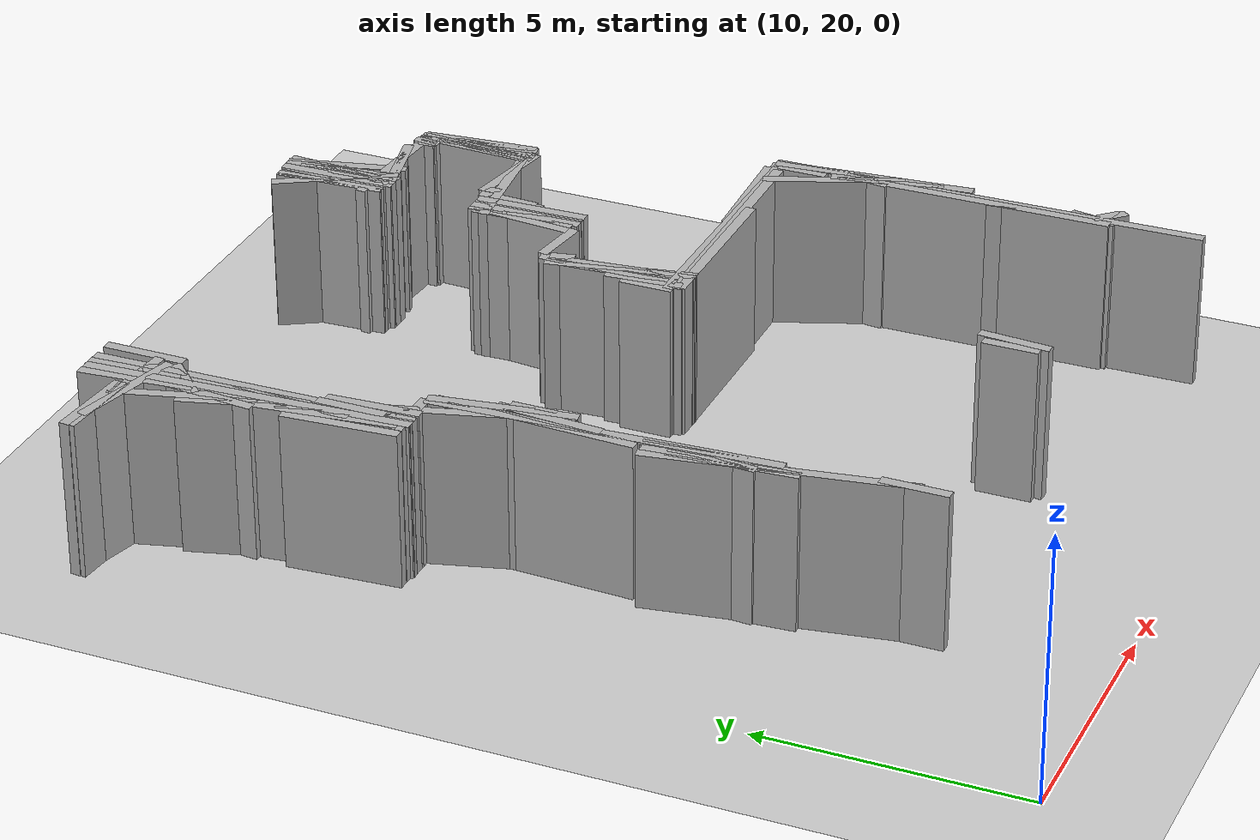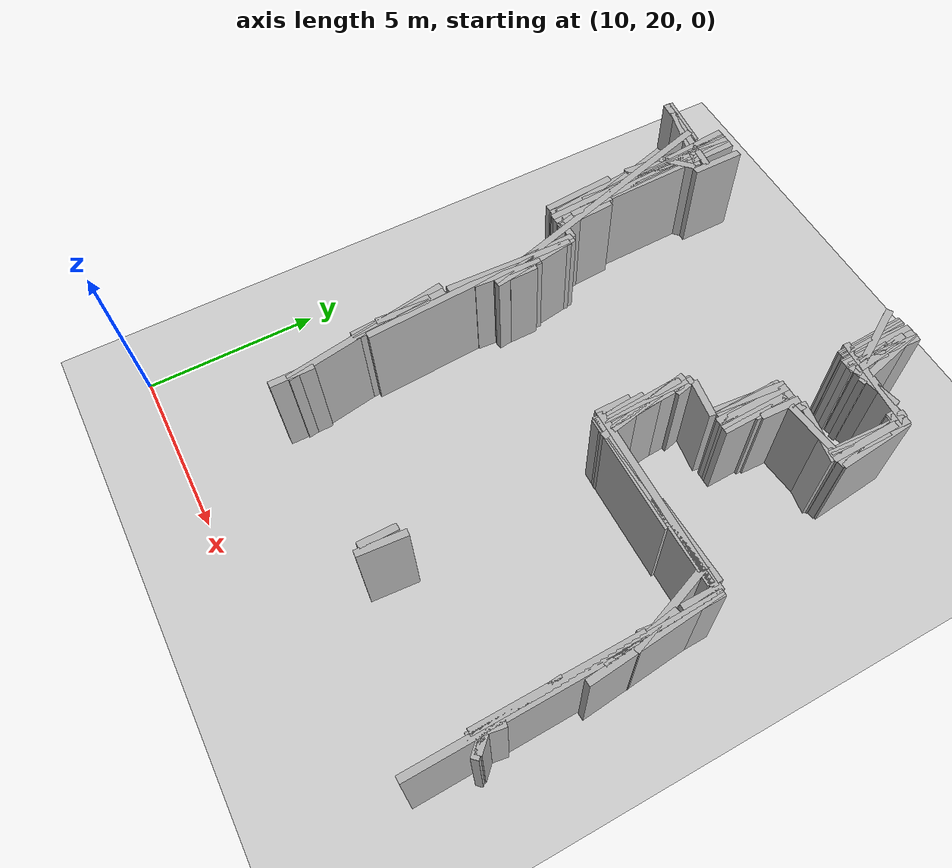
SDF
<sdf version="1.6">
 <world name="aboureyhan">
  <model name="ground_plane">
   <static>true</static>
   <link name="link">
    <collision name="collision">
     <geometry><plane><normal>0 0 1</normal><size>100 100</size></plane></geometry>
    </collision>
    <visual name="visual">
     <geometry><plane><normal>0 0 1</normal><size>500 500</size></plane></geometry>
     <material>
      <ambient>0.8 0.8 0.8 1</ambient>
      <diffuse>0.8 0.8 0.8 1</diffuse>
      <specular>0.8 0.8 0.8 1</specular>
     </material>
    </visual>
   </link>
  </model>
  <model name="wall_29">
   <static>true</static>
   <pose>12.350000000000001 35.1 1.5 0 0 -1.5544043524868911</pose>
   <link name="link">
    <collision name="collision"><geometry><box><size>6.100819617067867 0.2 3.0</size></box></geometry></collision>
    <visual name="visual">
     <geometry><box><size>6.100819617067867 0.2 3.0</size></box></geometry>
     <material><ambient>0.5 0.5 0.5 1</ambient><diffuse>0.7 0.7 0.7 1</diffuse></material>
    </visual>
   </link>
  </model>
  <model name="wall_34">
   <static>true</static>
   <pose>18.55 30.475 1.5 0 0 -1.501939837493851</pose>
   <link name="link">
    <collision name="collision"><geometry><box><size>1.453444185374866 0.2 3.0</size></box></geometry></collision>
    <visual name="visual">
     <geometry><box><size>1.453444185374866 0.2 3.0</size></box></geometry>
     <material><ambient>0.5 0.5 0.5 1</ambient><diffuse>0.7 0.7 0.7 1</diffuse></material>
    </visual>
   </link>
  </model>
  <model name="wall_44">
   <static>true</static>
   <pose>20.575000000000003 37.4 1.5 0 0 -1.3258176636680326</pose>
   <link name="link">
    <collision name="collision">
     <geometry><box><size>2.2677080940897163 0.2 3.0</size></box></geometry>
    </collision>
    <visual name="visual">
     <geometry><box><size>2.2677080940897163 0.2 3.0</size></box></geometry>
     <material><ambient>0.5 0.5 0.5 1</ambient><diffuse>0.7 0.7 0.7 1</diffuse></material>
    </visual>
   </link>
  </model>
  <model name="wall_47">
   <static>true</static>
   <pose>13.3 27.275 1.5 0 0 -1.5195591593914772</pose>
   <link name="link">
    <collision name="collision">
     <geometry><box><size>1.9525624189766664 0.2 3.0</size></box></geometry>
    </collision>
    <visual name="visual">
     <geometry><box><size>1.9525624189766664 0.2 3.0</size></box></geometry>
     <material><ambient>0.5 0.5 0.5 1</ambient><diffuse>0.7 0.7 0.7 1</diffuse></material>
    </visual>
   </link>
  </model>
  <model name="wall_86">
   <static>true</static>
   <pose>11.825000000000001 33.175 1.5 0 0 -1.5011417530663276</pose>
   <link name="link">
    <collision name="collision">
     <geometry><box><size>2.1552262062252363 0.2 3.0</size></box></geometry>
    </collision>
    <visual name="visual">
     <geometry><box><size>2.1552262062252363 0.2 3.0</size></box></geometry>
     <material><ambient>0.5 0.5 0.5 1</ambient><diffuse>0.7 0.7 0.7 1</diffuse></material>
    </visual>
   </link>
  </model>
  <model name="wall_87">
   <static>true</static>
   <pose>13.175 30.174999999999997 1.5 0 0 1.530817639671607</pose>
   <link name="link">
    <collision name="collision"><geometry><box><size>3.752998800959041 0.2 3.0</size></box></geometry></collision>
    <visual name="visual">
     <geometry><box><size>3.752998800959041 0.2 3.0</size></box></geometry>
     <material><ambient>0.5 0.5 0.5 1</ambient><diffuse>0.7 0.7 0.7 1</diffuse></material>
    </visual>
   </link>
  </model>
  <model name="wall_106">
   <static>true</static>
   <pose>23.925 25.85 1.5 0 0 -1.5527260047686724</pose>
   <link name="link">
    <collision name="collision"><geometry><box><size>8.301355311032045 0.2 3.0</size></box></geometry></collision>
    <visual name="visual">
     <geometry><box><size>8.301355311032045 0.2 3.0</size></box></geometry>
     <material><ambient>0.5 0.5 0.5 1</ambient><diffuse>0.7 0.7 0.7 1</diffuse></material>
    </visual>
   </link>
  </model>
  <model name="wall_122">
   <static>true</static>
   <pose>12.025 35.1 1.5 0 0 -1.4808755377596439</pose>
   <link name="link">
    <collision name="collision"><geometry><box><size>6.124744892646559 0.2 3.0</size></box></geometry></collision>
    <visual name="visual">
     <geometry><box><size>6.124744892646559 0.2 3.0</size></box></geometry>
     <material><ambient>0.5 0.5 0.5 1</ambient><diffuse>0.7 0.7 0.7 1</diffuse></material>
    </visual>
   </link>
  </model>
  <model name="wall_125">
   <static>true</static>
   <pose>23.700000000000003 29.5 1.5 0 0 1.5707963267948966</pose>
   <link name="link">
    <collision name="collision">
     <geometry><box><size>1.0999999999999943 0.2 3.0</size></box></geometry>
    </collision>
    <visual name="visual">
     <geometry><box><size>1.0999999999999943 0.2 3.0</size></box></geometry>
     <material><ambient>0.5 0.5 0.5 1</ambient><diffuse>0.7 0.7 0.7 1</diffuse></material>
    </visual>
   </link>
  </model>
  <model name="wall_130">
   <static>true</static>
   <pose>20.325000000000003 33.475 1.5 0 0 -1.5475447039844332</pose>
   <link name="link">
    <collision name="collision">
     <geometry><box><size>2.1505813167606482 0.2 3.0</size></box></geometry>
    </collision>
    <visual name="visual">
     <geometry><box><size>2.1505813167606482 0.2 3.0</size></box></geometry>
     <material><ambient>0.5 0.5 0.5 1</ambient><diffuse>0.7 0.7 0.7 1</diffuse></material>
    </visual>
   </link>
  </model>
  <model name="wall_133">
   <static>true</static>
   <pose>20.375 33.85 1.5 0 0 -1.5253730473733194</pose>
   <link name="link">
    <collision name="collision">
     <geometry><box><size>1.1011357772772707 0.2 3.0</size></box></geometry>
    </collision>
    <visual name="visual">
     <geometry><box><size>1.1011357772772707 0.2 3.0</size></box></geometry>
     <material><ambient>0.5 0.5 0.5 1</ambient><diffuse>0.7 0.7 0.7 1</diffuse></material>
    </visual>
   </link>
  </model>
  <model name="wall_134">
   <static>true</static>
   <pose>20.175000000000004 37.375 1.5 0 0 -1.5485777614681773</pose>
   <link name="link">
    <collision name="collision"><geometry><box><size>2.25055548698538 0.2 3.0</size></box></geometry></collision>
    <visual name="visual">
     <geometry><box><size>2.25055548698538 0.2 3.0</size></box></geometry>
     <material><ambient>0.5 0.5 0.5 1</ambient><diffuse>0.7 0.7 0.7 1</diffuse></material>
    </visual>
   </link>
  </model>
  <model name="wall_143">
   <static>true</static>
   <pose>11.9 36.475 1.5 0 0 1.4814823338016745</pose>
   <link name="link">
    <collision name="collision"><geometry><box><size>3.363406011768436 0.2 3.0</size></box></geometry></collision>
    <visual name="visual">
     <geometry><box><size>3.363406011768436 0.2 3.0</size></box></geometry>
     <material><ambient>0.5 0.5 0.5 1</ambient><diffuse>0.7 0.7 0.7 1</diffuse></material>
    </visual>
   </link>
  </model>
  <model name="wall_145">
   <static>true</static>
   <pose>19.875 33.475 1.5 0 0 -1.5451609182732189</pose>
   <link name="link">
    <collision name="collision">
     <geometry><box><size>1.9506409203131188 0.2 3.0</size></box></geometry>
    </collision>
    <visual name="visual">
     <geometry><box><size>1.9506409203131188 0.2 3.0</size></box></geometry>
     <material><ambient>0.5 0.5 0.5 1</ambient><diffuse>0.7 0.7 0.7 1</diffuse></material>
    </visual>
   </link>
  </model>
  <model name="wall_196">
   <static>true</static>
   <pose>13.650000000000002 23.525 1.5 0 0 1.5707963267948966</pose>
   <link name="link">
    <collision name="collision"><geometry><box><size>1.25 0.2 3.0</size></box></geometry></collision>
    <visual name="visual">
     <geometry><box><size>1.25 0.2 3.0</size></box></geometry>
     <material><ambient>0.5 0.5 0.5 1</ambient><diffuse>0.7 0.7 0.7 1</diffuse></material>
    </visual>
   </link>
  </model>
  <model name="wall_198">
   <static>true</static>
   <pose>18.800000000000004 31.1 1.5 0 0 -1.467714718272196</pose>
   <link name="link">
    <collision name="collision">
     <geometry><box><size>2.9154759474226415 0.2 3.0</size></box></geometry>
    </collision>
    <visual name="visual">
     <geometry><box><size>2.9154759474226415 0.2 3.0</size></box></geometry>
     <material><ambient>0.5 0.5 0.5 1</ambient><diffuse>0.7 0.7 0.7 1</diffuse></material>
    </visual>
   </link>
  </model>
  <model name="wall_207">
   <static>true</static>
   <pose>12.100000000000001 35.1 1.5 0 0 -1.521655592378877</pose>
   <link name="link">
    <collision name="collision"><geometry><box><size>6.107372593840997 0.2 3.0</size></box></geometry></collision>
    <visual name="visual">
     <geometry><box><size>6.107372593840997 0.2 3.0</size></box></geometry>
     <material><ambient>0.5 0.5 0.5 1</ambient><diffuse>0.7 0.7 0.7 1</diffuse></material>
    </visual>
   </link>
  </model>
  <model name="wall_211">
   <static>true</static>
   <pose>20.25 33.475 1.5 0 0 1.5707963267948966</pose>
   <link name="link">
    <collision name="collision">
     <geometry><box><size>2.1499999999999915 0.2 3.0</size></box></geometry>
    </collision>
    <visual name="visual">
     <geometry><box><size>2.1499999999999915 0.2 3.0</size></box></geometry>
     <material><ambient>0.5 0.5 0.5 1</ambient><diffuse>0.7 0.7 0.7 1</diffuse></material>
    </visual>
   </link>
  </model>
  <model name="wall_218">
   <static>true</static>
   <pose>12.600000000000001 32.925 1.5 0 0 -1.5137155443886312</pose>
   <link name="link">
    <collision name="collision">
     <geometry><box><size>1.7528548142958105 0.2 3.0</size></box></geometry>
    </collision>
    <visual name="visual">
     <geometry><box><size>1.7528548142958105 0.2 3.0</size></box></geometry>
     <material><ambient>0.5 0.5 0.5 1</ambient><diffuse>0.7 0.7 0.7 1</diffuse></material>
    </visual>
   </link>
  </model>
  <model name="wall_221">
   <static>true</static>
   <pose>13.275000000000002 28.975 1.5 0 0 -1.516585927320233</pose>
   <link name="link">
    <collision name="collision"><geometry><box><size>6.459489143887467 0.2 3.0</size></box></geometry></collision>
    <visual name="visual">
     <geometry><box><size>6.459489143887467 0.2 3.0</size></box></geometry>
     <material><ambient>0.5 0.5 0.5 1</ambient><diffuse>0.7 0.7 0.7 1</diffuse></material>
    </visual>
   </link>
  </model>
  <model name="wall_222">
   <static>true</static>
   <pose>22.225 35.475 1.5 0 0 1.5070530142622103</pose>
   <link name="link">
    <collision name="collision"><geometry><box><size>2.354782367863332 0.2 3.0</size></box></geometry></collision>
    <visual name="visual">
     <geometry><box><size>2.354782367863332 0.2 3.0</size></box></geometry>
     <material><ambient>0.5 0.5 0.5 1</ambient><diffuse>0.7 0.7 0.7 1</diffuse></material>
    </visual>
   </link>
  </model>
  <model name="wall_270">
   <static>true</static>
   <pose>22.150000000000002 35.5 1.5 0 0 1.5273454314033654</pose>
   <link name="link">
    <collision name="collision"><geometry><box><size>2.302172886644279 0.2 3.0</size></box></geometry></collision>
    <visual name="visual">
     <geometry><box><size>2.302172886644279 0.2 3.0</size></box></geometry>
     <material><ambient>0.5 0.5 0.5 1</ambient><diffuse>0.7 0.7 0.7 1</diffuse></material>
    </visual>
   </link>
  </model>
  <model name="wall_292">
   <static>true</static>
   <pose>13.200000000000001 26.925000000000004 1.5 0 0 1.5063694873693443</pose>
   <link name="link">
    <collision name="collision">
     <geometry><box><size>1.5532224567009036 0.2 3.0</size></box></geometry>
    </collision>
    <visual name="visual">
     <geometry><box><size>1.5532224567009036 0.2 3.0</size></box></geometry>
     <material><ambient>0.5 0.5 0.5 1</ambient><diffuse>0.7 0.7 0.7 1</diffuse></material>
    </visual>
   </link>
  </model>
  <model name="wall_320">
   <static>true</static>
   <pose>20.375 37.425 1.5 0 0 1.5011417530663276</pose>
   <link name="link">
    <collision name="collision">
     <geometry><box><size>2.1552262062252363 0.2 3.0</size></box></geometry>
    </collision>
    <visual name="visual">
     <geometry><box><size>2.1552262062252363 0.2 3.0</size></box></geometry>
     <material><ambient>0.5 0.5 0.5 1</ambient><diffuse>0.7 0.7 0.7 1</diffuse></material>
    </visual>
   </link>
  </model>
  <model name="wall_333">
   <static>true</static>
   <pose>19.900000000000002 37.4 1.5 0 0 -1.5232132235179128</pose>
   <link name="link">
    <collision name="collision">
     <geometry><box><size>2.1023796041628726 0.2 3.0</size></box></geometry>
    </collision>
    <visual name="visual">
     <geometry><box><size>2.1023796041628726 0.2 3.0</size></box></geometry>
     <material><ambient>0.5 0.5 0.5 1</ambient><diffuse>0.7 0.7 0.7 1</diffuse></material>
    </visual>
   </link>
  </model>
  <model name="wall_334">
   <static>true</static>
   <pose>13.375000000000002 30.0 1.5 0 0 1.4959364790841287</pose>
   <link name="link">
    <collision name="collision">
     <geometry><box><size>2.0056171120131583 0.2 3.0</size></box></geometry>
    </collision>
    <visual name="visual">
     <geometry><box><size>2.0056171120131583 0.2 3.0</size></box></geometry>
     <material><ambient>0.5 0.5 0.5 1</ambient><diffuse>0.7 0.7 0.7 1</diffuse></material>
    </visual>
   </link>
  </model>
  <model name="wall_336">
   <static>true</static>
   <pose>18.8 23.625 1.5 0 0 1.5707963267948966</pose>
   <link name="link">
    <collision name="collision">
     <geometry><box><size>1.0499999999999972 0.2 3.0</size></box></geometry>
    </collision>
    <visual name="visual">
     <geometry><box><size>1.0499999999999972 0.2 3.0</size></box></geometry>
     <material><ambient>0.5 0.5 0.5 1</ambient><diffuse>0.7 0.7 0.7 1</diffuse></material>
    </visual>
   </link>
  </model>
  <model name="wall_340">
   <static>true</static>
   <pose>22.450000000000003 35.5 1.5 0 0 -1.4801364395941514</pose>
   <link name="link">
    <collision name="collision"><geometry><box><size>2.209072203437441 0.2 3.0</size></box></geometry></collision>
    <visual name="visual">
     <geometry><box><size>2.209072203437441 0.2 3.0</size></box></geometry>
     <material><ambient>0.5 0.5 0.5 1</ambient><diffuse>0.7 0.7 0.7 1</diffuse></material>
    </visual>
   </link>
  </model>
  <model name="wall_345">
   <static>true</static>
   <pose>21.025000000000002 29.925000000000004 1.5 0 0 -0.009523521593612314</pose>
   <link name="link">
    <collision name="collision"><geometry><box><size>5.250238089839355 0.2 3.0</size></box></geometry></collision>
    <visual name="visual">
     <geometry><box><size>5.250238089839355 0.2 3.0</size></box></geometry>
     <material><ambient>0.5 0.5 0.5 1</ambient><diffuse>0.7 0.7 0.7 1</diffuse></material>
    </visual>
   </link>
  </model>
  <model name="wall_350">
   <static>true</static>
   <pose>23.975 28.1 1.5 0 0 -1.4789502005301587</pose>
   <link name="link">
    <collision name="collision"><geometry><box><size>3.816084380618434 0.2 3.0</size></box></geometry></collision>
    <visual name="visual">
     <geometry><box><size>3.816084380618434 0.2 3.0</size></box></geometry>
     <material><ambient>0.5 0.5 0.5 1</ambient><diffuse>0.7 0.7 0.7 1</diffuse></material>
    </visual>
   </link>
  </model>
  <model name="wall_354">
   <static>true</static>
   <pose>20.125 37.375 1.5 0 0 -1.5485777614681773</pose>
   <link name="link">
    <collision name="collision"><geometry><box><size>2.25055548698538 0.2 3.0</size></box></geometry></collision>
    <visual name="visual">
     <geometry><box><size>2.25055548698538 0.2 3.0</size></box></geometry>
     <material><ambient>0.5 0.5 0.5 1</ambient><diffuse>0.7 0.7 0.7 1</diffuse></material>
    </visual>
   </link>
  </model>
  <model name="wall_387">
   <static>true</static>
   <pose>23.825000000000003 25.525 1.5 0 0 -1.4801364395941499</pose>
   <link name="link">
    <collision name="collision">
     <geometry><box><size>0.5522680508593603 0.2 3.0</size></box></geometry>
    </collision>
    <visual name="visual">
     <geometry><box><size>0.5522680508593603 0.2 3.0</size></box></geometry>
     <material><ambient>0.5 0.5 0.5 1</ambient><diffuse>0.7 0.7 0.7 1</diffuse></material>
    </visual>
   </link>
  </model>
  <model name="wall_390">
   <static>true</static>
   <pose>12.400000000000002 33.25 1.5 0 0 1.5707963267948966</pose>
   <link name="link">
    <collision name="collision">
     <geometry><box><size>1.3000000000000114 0.2 3.0</size></box></geometry>
    </collision>
    <visual name="visual">
     <geometry><box><size>1.3000000000000114 0.2 3.0</size></box></geometry>
     <material><ambient>0.5 0.5 0.5 1</ambient><diffuse>0.7 0.7 0.7 1</diffuse></material>
    </visual>
   </link>
  </model>
  <model name="wall_416">
   <static>true</static>
   <pose>20.200000000000003 29.75 1.5 0 0 0.0</pose>
   <link name="link">
    <collision name="collision"><geometry><box><size>3.400000000000002 0.2 3.0</size></box></geometry></collision>
    <visual name="visual">
     <geometry><box><size>3.400000000000002 0.2 3.0</size></box></geometry>
     <material><ambient>0.5 0.5 0.5 1</ambient><diffuse>0.7 0.7 0.7 1</diffuse></material>
    </visual>
   </link>
  </model>
  <model name="wall_424">
   <static>true</static>
   <pose>22.400000000000002 30.0 1.5 0 0 0.04164257909858608</pose>
   <link name="link">
    <collision name="collision">
     <geometry><box><size>2.4020824298928614 0.2 3.0</size></box></geometry>
    </collision>
    <visual name="visual">
     <geometry><box><size>2.4020824298928614 0.2 3.0</size></box></geometry>
     <material><ambient>0.5 0.5 0.5 1</ambient><diffuse>0.7 0.7 0.7 1</diffuse></material>
    </visual>
   </link>
  </model>
  <model name="wall_457">
   <static>true</static>
   <pose>21.050000000000004 36.6 1.5 0 0 -0.07393903765794141</pose>
   <link name="link">
    <collision name="collision">
     <geometry><box><size>2.7073972741361763 0.2 3.0</size></box></geometry>
    </collision>
    <visual name="visual">
     <geometry><box><size>2.7073972741361763 0.2 3.0</size></box></geometry>
     <material><ambient>0.5 0.5 0.5 1</ambient><diffuse>0.7 0.7 0.7 1</diffuse></material>
    </visual>
   </link>
  </model>
  <model name="wall_461">
   <static>true</static>
   <pose>12.4 33.45 1.5 0 0 -1.2958864853142245</pose>
   <link name="link">
    <collision name="collision"><geometry><box><size>8.104319835741935 0.2 3.0</size></box></geometry></collision>
    <visual name="visual">
     <geometry><box><size>8.104319835741935 0.2 3.0</size></box></geometry>
     <material><ambient>0.5 0.5 0.5 1</ambient><diffuse>0.7 0.7 0.7 1</diffuse></material>
    </visual>
   </link>
  </model>
  <model name="wall_479">
   <static>true</static>
   <pose>13.225000000000001 26.825000000000003 1.5 0 0 -1.4801364395941514</pose>
   <link name="link">
    <collision name="collision">
     <geometry><box><size>2.7613402542968153 0.2 3.0</size></box></geometry>
    </collision>
    <visual name="visual">
     <geometry><box><size>2.7613402542968153 0.2 3.0</size></box></geometry>
     <material><ambient>0.5 0.5 0.5 1</ambient><diffuse>0.7 0.7 0.7 1</diffuse></material>
    </visual>
   </link>
  </model>
  <model name="wall_492">
   <static>true</static>
   <pose>23.825000000000003 25.700000000000003 1.5 0 0 -1.559685672897289</pose>
   <link name="link">
    <collision name="collision"><geometry><box><size>4.500277769204919 0.2 3.0</size></box></geometry></collision>
    <visual name="visual">
     <geometry><box><size>4.500277769204919 0.2 3.0</size></box></geometry>
     <material><ambient>0.5 0.5 0.5 1</ambient><diffuse>0.7 0.7 0.7 1</diffuse></material>
    </visual>
   </link>
  </model>
  <model name="wall_497">
   <static>true</static>
   <pose>22.275 35.3 1.5 0 0 -1.545801533175976</pose>
   <link name="link">
    <collision name="collision"><geometry><box><size>2.000624902374256 0.2 3.0</size></box></geometry></collision>
    <visual name="visual">
     <geometry><box><size>2.000624902374256 0.2 3.0</size></box></geometry>
     <material><ambient>0.5 0.5 0.5 1</ambient><diffuse>0.7 0.7 0.7 1</diffuse></material>
    </visual>
   </link>
  </model>
  <model name="wall_517">
   <static>true</static>
   <pose>20.700000000000003 34.449999999999996 1.5 0 0 1.5707963267948966</pose>
   <link name="link">
    <collision name="collision">
     <geometry><box><size>0.29999999999999716 0.2 3.0</size></box></geometry>
    </collision>
    <visual name="visual">
     <geometry><box><size>0.29999999999999716 0.2 3.0</size></box></geometry>
     <material><ambient>0.5 0.5 0.5 1</ambient><diffuse>0.7 0.7 0.7 1</diffuse></material>
    </visual>
   </link>
  </model>
  <model name="wall_522">
   <static>true</static>
   <pose>19.85 33.525 1.5 0 0 1.4735431285433294</pose>
   <link name="link">
    <collision name="collision">
     <geometry><box><size>2.0597329924045953 0.2 3.0</size></box></geometry>
    </collision>
    <visual name="visual">
     <geometry><box><size>2.0597329924045953 0.2 3.0</size></box></geometry>
     <material><ambient>0.5 0.5 0.5 1</ambient><diffuse>0.7 0.7 0.7 1</diffuse></material>
    </visual>
   </link>
  </model>
  <model name="wall_529">
   <static>true</static>
   <pose>22.0 36.45 1.5 0 0 1.5707963267948966</pose>
   <link name="link">
    <collision name="collision">
     <geometry><box><size>0.4000000000000057 0.2 3.0</size></box></geometry>
    </collision>
    <visual name="visual">
     <geometry><box><size>0.4000000000000057 0.2 3.0</size></box></geometry>
     <material><ambient>0.5 0.5 0.5 1</ambient><diffuse>0.7 0.7 0.7 1</diffuse></material>
    </visual>
   </link>
  </model>
  <model name="wall_531">
   <static>true</static>
   <pose>10.825000000000001 37.275000000000006 1.5 0 0 -0.09065988720074841</pose>
   <link name="link">
    <collision name="collision">
     <geometry><box><size>1.6568041525780919 0.2 3.0</size></box></geometry>
    </collision>
    <visual name="visual">
     <geometry><box><size>1.6568041525780919 0.2 3.0</size></box></geometry>
     <material><ambient>0.5 0.5 0.5 1</ambient><diffuse>0.7 0.7 0.7 1</diffuse></material>
    </visual>
   </link>
  </model>
  <model name="wall_555">
   <static>true</static>
   <pose>10.825000000000001 37.375 1.5 0 0 -0.09065988720074841</pose>
   <link name="link">
    <collision name="collision">
     <geometry><box><size>1.6568041525780919 0.2 3.0</size></box></geometry>
    </collision>
    <visual name="visual">
     <geometry><box><size>1.6568041525780919 0.2 3.0</size></box></geometry>
     <material><ambient>0.5 0.5 0.5 1</ambient><diffuse>0.7 0.7 0.7 1</diffuse></material>
    </visual>
   </link>
  </model>
  <model name="wall_557">
   <static>true</static>
   <pose>18.775 31.025000000000006 1.5 0 0 -1.3734007669450157</pose>
   <link name="link">
    <collision name="collision"><geometry><box><size>2.804460732476032 0.2 3.0</size></box></geometry></collision>
    <visual name="visual">
     <geometry><box><size>2.804460732476032 0.2 3.0</size></box></geometry>
     <material><ambient>0.5 0.5 0.5 1</ambient><diffuse>0.7 0.7 0.7 1</diffuse></material>
    </visual>
   </link>
  </model>
  <model name="wall_561">
   <static>true</static>
   <pose>23.85 27.1 1.5 0 0 -1.5707963267948966</pose>
   <link name="link">
    <collision name="collision">
     <geometry><box><size>1.2000000000000028 0.2 3.0</size></box></geometry>
    </collision>
    <visual name="visual">
     <geometry><box><size>1.2000000000000028 0.2 3.0</size></box></geometry>
     <material><ambient>0.5 0.5 0.5 1</ambient><diffuse>0.7 0.7 0.7 1</diffuse></material>
    </visual>
   </link>
  </model>
  <model name="wall_575">
   <static>true</static>
   <pose>12.000000000000002 33.525 1.5 0 0 -1.453687582228032</pose>
   <link name="link">
    <collision name="collision">
     <geometry><box><size>2.5675864152935506 0.2 3.0</size></box></geometry>
    </collision>
    <visual name="visual">
     <geometry><box><size>2.5675864152935506 0.2 3.0</size></box></geometry>
     <material><ambient>0.5 0.5 0.5 1</ambient><diffuse>0.7 0.7 0.7 1</diffuse></material>
    </visual>
   </link>
  </model>
  <model name="wall_582">
   <static>true</static>
   <pose>18.775000000000002 31.225 1.5 0 0 -1.5142528898500796</pose>
   <link name="link">
    <collision name="collision"><geometry><box><size>2.654241887997391 0.2 3.0</size></box></geometry></collision>
    <visual name="visual">
     <geometry><box><size>2.654241887997391 0.2 3.0</size></box></geometry>
     <material><ambient>0.5 0.5 0.5 1</ambient><diffuse>0.7 0.7 0.7 1</diffuse></material>
    </visual>
   </link>
  </model>
  <model name="wall_611">
   <static>true</static>
   <pose>19.0 23.625 1.5 0 0 1.4968572891369576</pose>
   <link name="link">
    <collision name="collision">
     <geometry><box><size>1.3536986370680826 0.2 3.0</size></box></geometry>
    </collision>
    <visual name="visual">
     <geometry><box><size>1.3536986370680826 0.2 3.0</size></box></geometry>
     <material><ambient>0.5 0.5 0.5 1</ambient><diffuse>0.7 0.7 0.7 1</diffuse></material>
    </visual>
   </link>
  </model>
  <model name="wall_622">
   <static>true</static>
   <pose>20.075000000000003 33.475 1.5 0 0 -1.5475447039844332</pose>
   <link name="link">
    <collision name="collision">
     <geometry><box><size>2.1505813167606482 0.2 3.0</size></box></geometry>
    </collision>
    <visual name="visual">
     <geometry><box><size>2.1505813167606482 0.2 3.0</size></box></geometry>
     <material><ambient>0.5 0.5 0.5 1</ambient><diffuse>0.7 0.7 0.7 1</diffuse></material>
    </visual>
   </link>
  </model>
  <model name="wall_637">
   <static>true</static>
   <pose>18.400000000000002 30.349999999999994 1.5 0 0 1.5707963267948966</pose>
   <link name="link">
    <collision name="collision"><geometry><box><size>1.0 0.2 3.0</size></box></geometry></collision>
    <visual name="visual">
     <geometry><box><size>1.0 0.2 3.0</size></box></geometry>
     <material><ambient>0.5 0.5 0.5 1</ambient><diffuse>0.7 0.7 0.7 1</diffuse></material>
    </visual>
   </link>
  </model>
  <model name="wall_654">
   <static>true</static>
   <pose>20.025 37.375 1.5 0 0 1.5464109176221779</pose>
   <link name="link">
    <collision name="collision">
     <geometry><box><size>2.0506096654409993 0.2 3.0</size></box></geometry>
    </collision>
    <visual name="visual">
     <geometry><box><size>2.0506096654409993 0.2 3.0</size></box></geometry>
     <material><ambient>0.5 0.5 0.5 1</ambient><diffuse>0.7 0.7 0.7 1</diffuse></material>
    </visual>
   </link>
  </model>
  <model name="wall_671">
   <static>true</static>
   <pose>21.0 29.824999999999996 1.5 0 0 0.009803607479295422</pose>
   <link name="link">
    <collision name="collision"><geometry><box><size>5.100245092149982 0.2 3.0</size></box></geometry></collision>
    <visual name="visual">
     <geometry><box><size>5.100245092149982 0.2 3.0</size></box></geometry>
     <material><ambient>0.5 0.5 0.5 1</ambient><diffuse>0.7 0.7 0.7 1</diffuse></material>
    </visual>
   </link>
  </model>
  <model name="wall_672">
   <static>true</static>
   <pose>23.975 23.8 1.5 0 0 1.405647649380271</pose>
   <link name="link">
    <collision name="collision">
     <geometry><box><size>0.9124143795447313 0.2 3.0</size></box></geometry>
    </collision>
    <visual name="visual">
     <geometry><box><size>0.9124143795447313 0.2 3.0</size></box></geometry>
     <material><ambient>0.5 0.5 0.5 1</ambient><diffuse>0.7 0.7 0.7 1</diffuse></material>
    </visual>
   </link>
  </model>
  <model name="wall_691">
   <static>true</static>
   <pose>21.075000000000003 34.35 1.5 0 0 0.11272761159037642</pose>
   <link name="link">
    <collision name="collision"><geometry><box><size>2.666927070618919 0.2 3.0</size></box></geometry></collision>
    <visual name="visual">
     <geometry><box><size>2.666927070618919 0.2 3.0</size></box></geometry>
     <material><ambient>0.5 0.5 0.5 1</ambient><diffuse>0.7 0.7 0.7 1</diffuse></material>
    </visual>
   </link>
  </model>
  <model name="wall_699">
   <static>true</static>
   <pose>20.375 37.475 1.5 0 0 -1.4494443262241328</pose>
   <link name="link">
    <collision name="collision">
     <geometry><box><size>2.0651876428063356 0.2 3.0</size></box></geometry>
    </collision>
    <visual name="visual">
     <geometry><box><size>2.0651876428063356 0.2 3.0</size></box></geometry>
     <material><ambient>0.5 0.5 0.5 1</ambient><diffuse>0.7 0.7 0.7 1</diffuse></material>
    </visual>
   </link>
  </model>
  <model name="wall_708">
   <static>true</static>
   <pose>12.200000000000001 36.050000000000004 1.5 0 0 -1.5232132235179134</pose>
   <link name="link">
    <collision name="collision"><geometry><box><size>4.204759208325731 0.2 3.0</size></box></geometry></collision>
    <visual name="visual">
     <geometry><box><size>4.204759208325731 0.2 3.0</size></box></geometry>
     <material><ambient>0.5 0.5 0.5 1</ambient><diffuse>0.7 0.7 0.7 1</diffuse></material>
    </visual>
   </link>
  </model>
  <model name="wall_714">
   <static>true</static>
   <pose>13.400000000000002 30.875 1.5 0 0 -1.4209838702220001</pose>
   <link name="link">
    <collision name="collision">
     <geometry><box><size>2.6800186566514848 0.2 3.0</size></box></geometry>
    </collision>
    <visual name="visual">
     <geometry><box><size>2.6800186566514848 0.2 3.0</size></box></geometry>
     <material><ambient>0.5 0.5 0.5 1</ambient><diffuse>0.7 0.7 0.7 1</diffuse></material>
    </visual>
   </link>
  </model>
  <model name="wall_716">
   <static>true</static>
   <pose>13.55 30.375 1.5 0 0 1.5707963267948966</pose>
   <link name="link">
    <collision name="collision">
     <geometry><box><size>0.8499999999999943 0.2 3.0</size></box></geometry>
    </collision>
    <visual name="visual">
     <geometry><box><size>0.8499999999999943 0.2 3.0</size></box></geometry>
     <material><ambient>0.5 0.5 0.5 1</ambient><diffuse>0.7 0.7 0.7 1</diffuse></material>
    </visual>
   </link>
  </model>
  <model name="wall_740">
   <static>true</static>
   <pose>22.325000000000003 35.5 1.5 0 0 -1.419780983873539</pose>
   <link name="link">
    <collision name="collision">
     <geometry><box><size>2.3264780248263794 0.2 3.0</size></box></geometry>
    </collision>
    <visual name="visual">
     <geometry><box><size>2.3264780248263794 0.2 3.0</size></box></geometry>
     <material><ambient>0.5 0.5 0.5 1</ambient><diffuse>0.7 0.7 0.7 1</diffuse></material>
    </visual>
   </link>
  </model>
  <model name="wall_748">
   <static>true</static>
   <pose>13.175 26.575000000000003 1.5 0 0 -1.50705301426221</pose>
   <link name="link">
    <collision name="collision">
     <geometry><box><size>2.3547823678633177 0.2 3.0</size></box></geometry>
    </collision>
    <visual name="visual">
     <geometry><box><size>2.3547823678633177 0.2 3.0</size></box></geometry>
     <material><ambient>0.5 0.5 0.5 1</ambient><diffuse>0.7 0.7 0.7 1</diffuse></material>
    </visual>
   </link>
  </model>
  <model name="wall_750">
   <static>true</static>
   <pose>12.575000000000001 32.2 1.5 0 0 0.0</pose>
   <link name="link">
    <collision name="collision">
     <geometry><box><size>1.1500000000000021 0.2 3.0</size></box></geometry>
    </collision>
    <visual name="visual">
     <geometry><box><size>1.1500000000000021 0.2 3.0</size></box></geometry>
     <material><ambient>0.5 0.5 0.5 1</ambient><diffuse>0.7 0.7 0.7 1</diffuse></material>
    </visual>
   </link>
  </model>
  <model name="wall_756">
   <static>true</static>
   <pose>21.475 34.449999999999996 1.5 0 0 -0.16977827396833686</pose>
   <link name="link">
    <collision name="collision">
     <geometry><box><size>1.7755280904564699 0.2 3.0</size></box></geometry>
    </collision>
    <visual name="visual">
     <geometry><box><size>1.7755280904564699 0.2 3.0</size></box></geometry>
     <material><ambient>0.5 0.5 0.5 1</ambient><diffuse>0.7 0.7 0.7 1</diffuse></material>
    </visual>
   </link>
  </model>
  <model name="wall_780">
   <static>true</static>
   <pose>23.875 27.799999999999997 1.5 0 0 -1.4056476493802703</pose>
   <link name="link">
    <collision name="collision"><geometry><box><size>2.128966885604371 0.2 3.0</size></box></geometry></collision>
    <visual name="visual">
     <geometry><box><size>2.128966885604371 0.2 3.0</size></box></geometry>
     <material><ambient>0.5 0.5 0.5 1</ambient><diffuse>0.7 0.7 0.7 1</diffuse></material>
    </visual>
   </link>
  </model>
  <model name="wall_782">
   <static>true</static>
   <pose>18.650000000000002 31.150000000000006 1.5 0 0 1.5707963267948966</pose>
   <link name="link">
    <collision name="collision"><geometry><box><size>2.5 0.2 3.0</size></box></geometry></collision>
    <visual name="visual">
     <geometry><box><size>2.5 0.2 3.0</size></box></geometry>
     <material><ambient>0.5 0.5 0.5 1</ambient><diffuse>0.7 0.7 0.7 1</diffuse></material>
    </visual>
   </link>
  </model>
  <model name="wall_791">
   <static>true</static>
   <pose>20.0 37.375 1.5 0 0 -1.041206728012823</pose>
   <link name="link">
    <collision name="collision">
     <geometry><box><size>2.3753947040439503 0.2 3.0</size></box></geometry>
    </collision>
    <visual name="visual">
     <geometry><box><size>2.3753947040439503 0.2 3.0</size></box></geometry>
     <material><ambient>0.5 0.5 0.5 1</ambient><diffuse>0.7 0.7 0.7 1</diffuse></material>
    </visual>
   </link>
  </model>
  <model name="wall_795">
   <static>true</static>
   <pose>12.700000000000003 37.375 1.5 0 0 1.5707963267948966</pose>
   <link name="link">
    <collision name="collision">
     <geometry><box><size>1.5500000000000114 0.2 3.0</size></box></geometry>
    </collision>
    <visual name="visual">
     <geometry><box><size>1.5500000000000114 0.2 3.0</size></box></geometry>
     <material><ambient>0.5 0.5 0.5 1</ambient><diffuse>0.7 0.7 0.7 1</diffuse></material>
    </visual>
   </link>
  </model>
  <model name="wall_803">
   <static>true</static>
   <pose>19.85 37.4 1.5 0 0 -1.5232132235179128</pose>
   <link name="link">
    <collision name="collision">
     <geometry><box><size>2.1023796041628726 0.2 3.0</size></box></geometry>
    </collision>
    <visual name="visual">
     <geometry><box><size>2.1023796041628726 0.2 3.0</size></box></geometry>
     <material><ambient>0.5 0.5 0.5 1</ambient><diffuse>0.7 0.7 0.7 1</diffuse></material>
    </visual>
   </link>
  </model>
  <model name="wall_812">
   <static>true</static>
   <pose>20.425000000000004 36.85 1.5 0 0 1.5291537476963077</pose>
   <link name="link">
    <collision name="collision">
     <geometry><box><size>1.2010412149464342 0.2 3.0</size></box></geometry>
    </collision>
    <visual name="visual">
     <geometry><box><size>1.2010412149464342 0.2 3.0</size></box></geometry>
     <material><ambient>0.5 0.5 0.5 1</ambient><diffuse>0.7 0.7 0.7 1</diffuse></material>
    </visual>
   </link>
  </model>
  <model name="wall_814">
   <static>true</static>
   <pose>24.150000000000002 23.599999999999998 1.5 0 0 -0.7853981633974483</pose>
   <link name="link">
    <collision name="collision"><geometry><box><size>0.565685424949236 0.2 3.0</size></box></geometry></collision>
    <visual name="visual">
     <geometry><box><size>0.565685424949236 0.2 3.0</size></box></geometry>
     <material><ambient>0.5 0.5 0.5 1</ambient><diffuse>0.7 0.7 0.7 1</diffuse></material>
    </visual>
   </link>
  </model>
  <model name="wall_816">
   <static>true</static>
   <pose>12.05 34.2 1.5 0 0 -1.295886485314224</pose>
   <link name="link">
    <collision name="collision"><geometry><box><size>4.052159917870967 0.2 3.0</size></box></geometry></collision>
    <visual name="visual">
     <geometry><box><size>4.052159917870967 0.2 3.0</size></box></geometry>
     <material><ambient>0.5 0.5 0.5 1</ambient><diffuse>0.7 0.7 0.7 1</diffuse></material>
    </visual>
   </link>
  </model>
  <model name="wall_825">
   <static>true</static>
   <pose>20.150000000000002 37.0 1.5 0 0 -1.5707963267948966</pose>
   <link name="link">
    <collision name="collision">
     <geometry><box><size>1.3000000000000114 0.2 3.0</size></box></geometry>
    </collision>
    <visual name="visual">
     <geometry><box><size>1.3000000000000114 0.2 3.0</size></box></geometry>
     <material><ambient>0.5 0.5 0.5 1</ambient><diffuse>0.7 0.7 0.7 1</diffuse></material>
    </visual>
   </link>
  </model>
  <model name="wall_842">
   <static>true</static>
   <pose>12.15 35.225 1.5 0 0 -1.5195591593914777</pose>
   <link name="link">
    <collision name="collision"><geometry><box><size>5.85768725693 0.2 3.0</size></box></geometry></collision>
    <visual name="visual">
     <geometry><box><size>5.85768725693 0.2 3.0</size></box></geometry>
     <material><ambient>0.5 0.5 0.5 1</ambient><diffuse>0.7 0.7 0.7 1</diffuse></material>
    </visual>
   </link>
  </model>
  <model name="wall_844">
   <static>true</static>
   <pose>22.35 35.2 1.5 0 0 -1.5707963267948966</pose>
   <link name="link">
    <collision name="collision">
     <geometry><box><size>1.5999999999999943 0.2 3.0</size></box></geometry>
    </collision>
    <visual name="visual">
     <geometry><box><size>1.5999999999999943 0.2 3.0</size></box></geometry>
     <material><ambient>0.5 0.5 0.5 1</ambient><diffuse>0.7 0.7 0.7 1</diffuse></material>
    </visual>
   </link>
  </model>
  <model name="wall_851">
   <static>true</static>
   <pose>19.3 32.475 1.5 0 0 -0.13552771398549296</pose>
   <link name="link">
    <collision name="collision">
     <geometry><box><size>1.1101801655587262 0.2 3.0</size></box></geometry>
    </collision>
    <visual name="visual">
     <geometry><box><size>1.1101801655587262 0.2 3.0</size></box></geometry>
     <material><ambient>0.5 0.5 0.5 1</ambient><diffuse>0.7 0.7 0.7 1</diffuse></material>
    </visual>
   </link>
  </model>
  <model name="wall_890">
   <static>true</static>
   <pose>24.225 23.474999999999998 1.5 0 0 -0.7853981633974483</pose>
   <link name="link">
    <collision name="collision">
     <geometry><box><size>0.4949747468305853 0.2 3.0</size></box></geometry>
    </collision>
    <visual name="visual">
     <geometry><box><size>0.4949747468305853 0.2 3.0</size></box></geometry>
     <material><ambient>0.5 0.5 0.5 1</ambient><diffuse>0.7 0.7 0.7 1</diffuse></material>
    </visual>
   </link>
  </model>
  <model name="wall_893">
   <static>true</static>
   <pose>20.025 33.150000000000006 1.5 0 0 -1.537475330916649</pose>
   <link name="link">
    <collision name="collision">
     <geometry><box><size>1.5008331019803633 0.2 3.0</size></box></geometry>
    </collision>
    <visual name="visual">
     <geometry><box><size>1.5008331019803633 0.2 3.0</size></box></geometry>
     <material><ambient>0.5 0.5 0.5 1</ambient><diffuse>0.7 0.7 0.7 1</diffuse></material>
    </visual>
   </link>
  </model>
  <model name="wall_896">
   <static>true</static>
   <pose>23.575000000000003 28.75 1.5 0 0 -1.2076493168487206</pose>
   <link name="link">
    <collision name="collision">
     <geometry><box><size>2.6744158240632663 0.2 3.0</size></box></geometry>
    </collision>
    <visual name="visual">
     <geometry><box><size>2.6744158240632663 0.2 3.0</size></box></geometry>
     <material><ambient>0.5 0.5 0.5 1</ambient><diffuse>0.7 0.7 0.7 1</diffuse></material>
    </visual>
   </link>
  </model>
  <model name="wall_903">
   <static>true</static>
   <pose>13.300000000000002 25.8 1.5 0 0 -1.4056476493802699</pose>
   <link name="link">
    <collision name="collision"><geometry><box><size>4.86621002423858 0.2 3.0</size></box></geometry></collision>
    <visual name="visual">
     <geometry><box><size>4.86621002423858 0.2 3.0</size></box></geometry>
     <material><ambient>0.5 0.5 0.5 1</ambient><diffuse>0.7 0.7 0.7 1</diffuse></material>
    </visual>
   </link>
  </model>
  <model name="wall_910">
   <static>true</static>
   <pose>18.625 31.075000000000003 1.5 0 0 -1.5070530142622085</pose>
   <link name="link">
    <collision name="collision">
     <geometry><box><size>2.3547823678633177 0.2 3.0</size></box></geometry>
    </collision>
    <visual name="visual">
     <geometry><box><size>2.3547823678633177 0.2 3.0</size></box></geometry>
     <material><ambient>0.5 0.5 0.5 1</ambient><diffuse>0.7 0.7 0.7 1</diffuse></material>
    </visual>
   </link>
  </model>
  <model name="wall_913">
   <static>true</static>
   <pose>11.475000000000001 37.075 1.5 0 0 -0.250443089611357</pose>
   <link name="link">
    <collision name="collision"><geometry><box><size>2.219234102117216 0.2 3.0</size></box></geometry></collision>
    <visual name="visual">
     <geometry><box><size>2.219234102117216 0.2 3.0</size></box></geometry>
     <material><ambient>0.5 0.5 0.5 1</ambient><diffuse>0.7 0.7 0.7 1</diffuse></material>
    </visual>
   </link>
  </model>
  <model name="wall_926">
   <static>true</static>
   <pose>22.075000000000003 36.45 1.5 0 0 1.4711276743037331</pose>
   <link name="link">
    <collision name="collision">
     <geometry><box><size>0.5024937810560446 0.2 3.0</size></box></geometry>
    </collision>
    <visual name="visual">
     <geometry><box><size>0.5024937810560446 0.2 3.0</size></box></geometry>
     <material><ambient>0.5 0.5 0.5 1</ambient><diffuse>0.7 0.7 0.7 1</diffuse></material>
    </visual>
   </link>
  </model>
  <model name="wall_929">
   <static>true</static>
   <pose>13.100000000000001 31.475 1.5 0 0 1.5707963267948966</pose>
   <link name="link">
    <collision name="collision">
     <geometry><box><size>0.6499999999999915 0.2 3.0</size></box></geometry>
    </collision>
    <visual name="visual">
     <geometry><box><size>0.6499999999999915 0.2 3.0</size></box></geometry>
     <material><ambient>0.5 0.5 0.5 1</ambient><diffuse>0.7 0.7 0.7 1</diffuse></material>
    </visual>
   </link>
  </model>
  <model name="wall_944">
   <static>true</static>
   <pose>21.025 36.525 1.5 0 0 0.2220819019054853</pose>
   <link name="link">
    <collision name="collision">
     <geometry><box><size>1.5890248582070727 0.2 3.0</size></box></geometry>
    </collision>
    <visual name="visual">
     <geometry><box><size>1.5890248582070727 0.2 3.0</size></box></geometry>
     <material><ambient>0.5 0.5 0.5 1</ambient><diffuse>0.7 0.7 0.7 1</diffuse></material>
    </visual>
   </link>
  </model>
  <model name="wall_946">
   <static>true</static>
   <pose>12.175 34.675000000000004 1.5 0 0 1.5216555923788768</pose>
   <link name="link">
    <collision name="collision"><geometry><box><size>3.053686296920491 0.2 3.0</size></box></geometry></collision>
    <visual name="visual">
     <geometry><box><size>3.053686296920491 0.2 3.0</size></box></geometry>
     <material><ambient>0.5 0.5 0.5 1</ambient><diffuse>0.7 0.7 0.7 1</diffuse></material>
    </visual>
   </link>
  </model>
  <model name="wall_965">
   <static>true</static>
   <pose>20.325000000000003 37.45 1.5 0 0 -1.4056476493802699</pose>
   <link name="link">
    <collision name="collision">
     <geometry><box><size>1.5206906325745548 0.2 3.0</size></box></geometry>
    </collision>
    <visual name="visual">
     <geometry><box><size>1.5206906325745548 0.2 3.0</size></box></geometry>
     <material><ambient>0.5 0.5 0.5 1</ambient><diffuse>0.7 0.7 0.7 1</diffuse></material>
    </visual>
   </link>
  </model>
  <model name="wall_981">
   <static>true</static>
   <pose>12.175 36.325 1.5 0 0 0.7853981633974483</pose>
   <link name="link">
    <collision name="collision">
     <geometry><box><size>1.0606601717798212 0.2 3.0</size></box></geometry>
    </collision>
    <visual name="visual">
     <geometry><box><size>1.0606601717798212 0.2 3.0</size></box></geometry>
     <material><ambient>0.5 0.5 0.5 1</ambient><diffuse>0.7 0.7 0.7 1</diffuse></material>
    </visual>
   </link>
  </model>
  <model name="wall_989">
   <static>true</static>
   <pose>23.8 28.174999999999997 1.5 0 0 1.45368758222803</pose>
   <link name="link">
    <collision name="collision"><geometry><box><size>0.855862138431179 0.2 3.0</size></box></geometry></collision>
    <visual name="visual">
     <geometry><box><size>0.855862138431179 0.2 3.0</size></box></geometry>
     <material><ambient>0.5 0.5 0.5 1</ambient><diffuse>0.7 0.7 0.7 1</diffuse></material>
    </visual>
   </link>
  </model>
  <model name="wall_991">
   <static>true</static>
   <pose>20.475 34.025 1.5 0 0 1.5273454314033679</pose>
   <link name="link">
    <collision name="collision">
     <geometry><box><size>1.1510864433221253 0.2 3.0</size></box></geometry>
    </collision>
    <visual name="visual">
     <geometry><box><size>1.1510864433221253 0.2 3.0</size></box></geometry>
     <material><ambient>0.5 0.5 0.5 1</ambient><diffuse>0.7 0.7 0.7 1</diffuse></material>
    </visual>
   </link>
  </model>
  <model name="wall_1000">
   <static>true</static>
   <pose>18.8 32.175000000000004 1.5 0 0 -1.352127380920953</pose>
   <link name="link">
    <collision name="collision">
     <geometry><box><size>0.4609772228646475 0.2 3.0</size></box></geometry>
    </collision>
    <visual name="visual">
     <geometry><box><size>0.4609772228646475 0.2 3.0</size></box></geometry>
     <material><ambient>0.5 0.5 0.5 1</ambient><diffuse>0.7 0.7 0.7 1</diffuse></material>
    </visual>
   </link>
  </model>
  <model name="wall_1002">
   <static>true</static>
   <pose>11.950000000000001 37.125 1.5 0 0 -0.1067356726491395</pose>
   <link name="link">
    <collision name="collision"><geometry><box><size>1.408012784032875 0.2 3.0</size></box></geometry></collision>
    <visual name="visual">
     <geometry><box><size>1.408012784032875 0.2 3.0</size></box></geometry>
     <material><ambient>0.5 0.5 0.5 1</ambient><diffuse>0.7 0.7 0.7 1</diffuse></material>
    </visual>
   </link>
  </model>
 </world>
</sdf>
